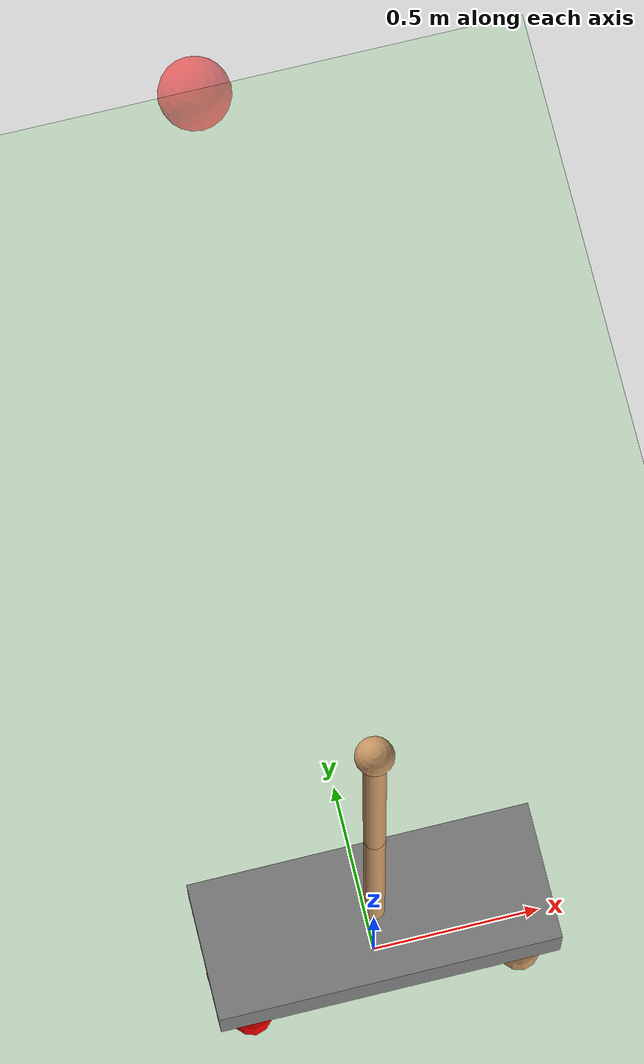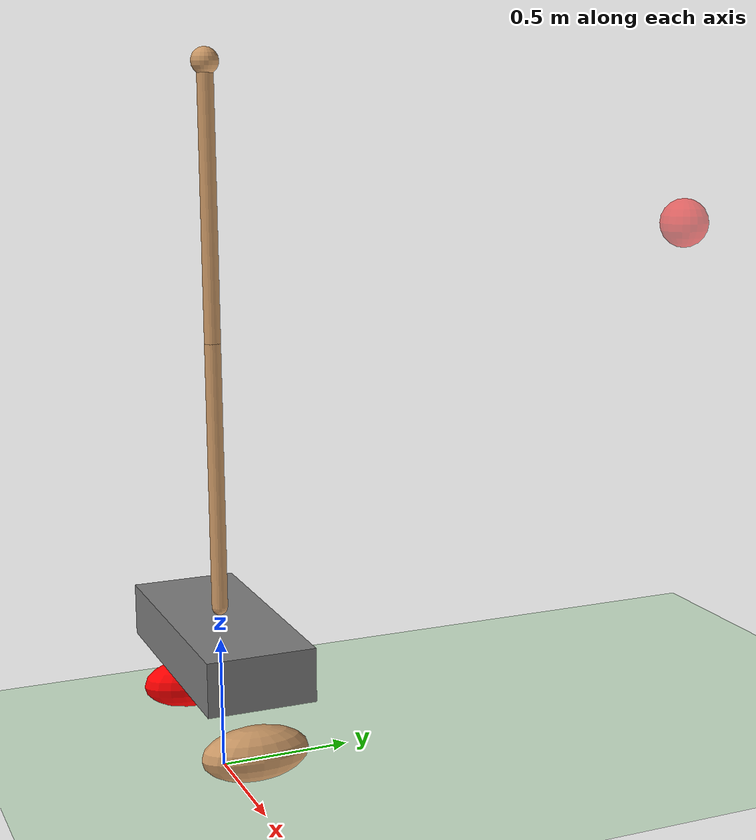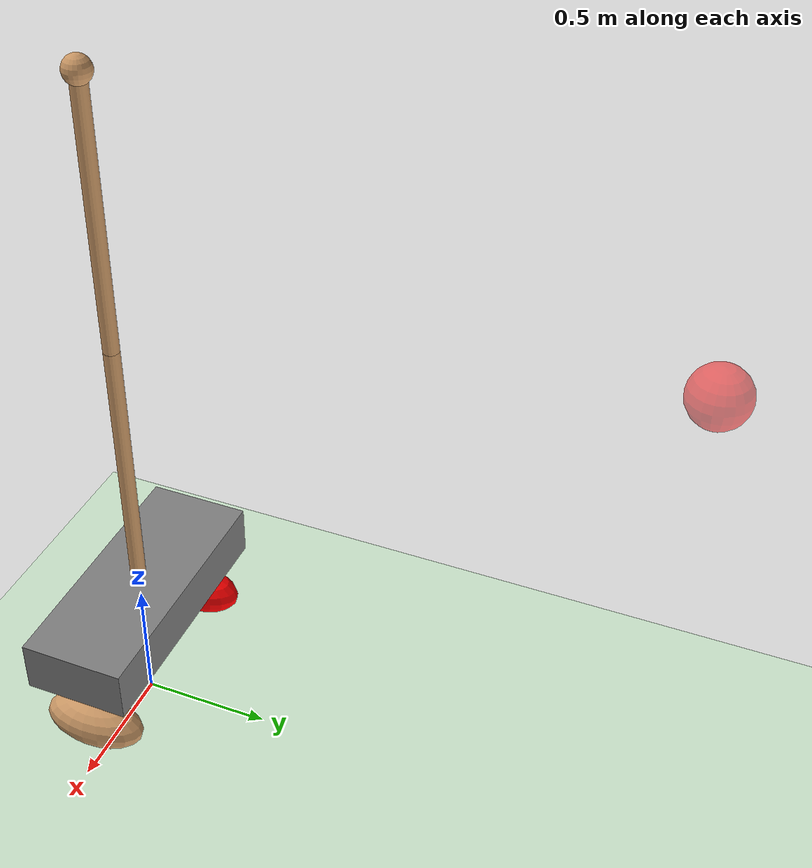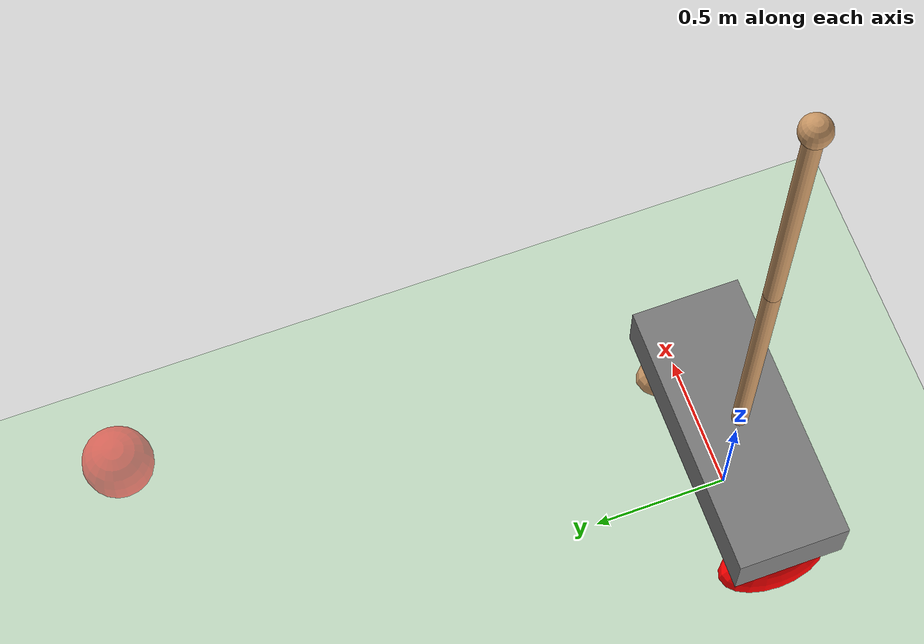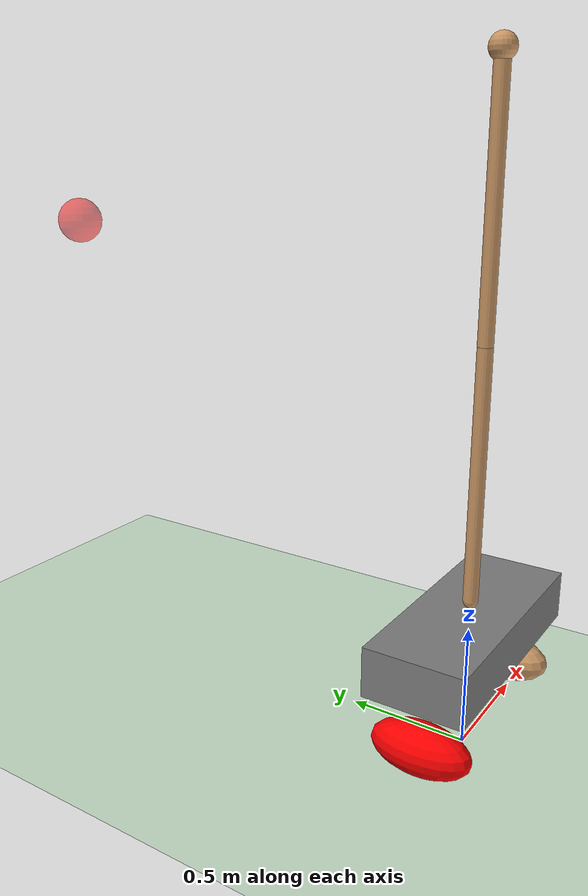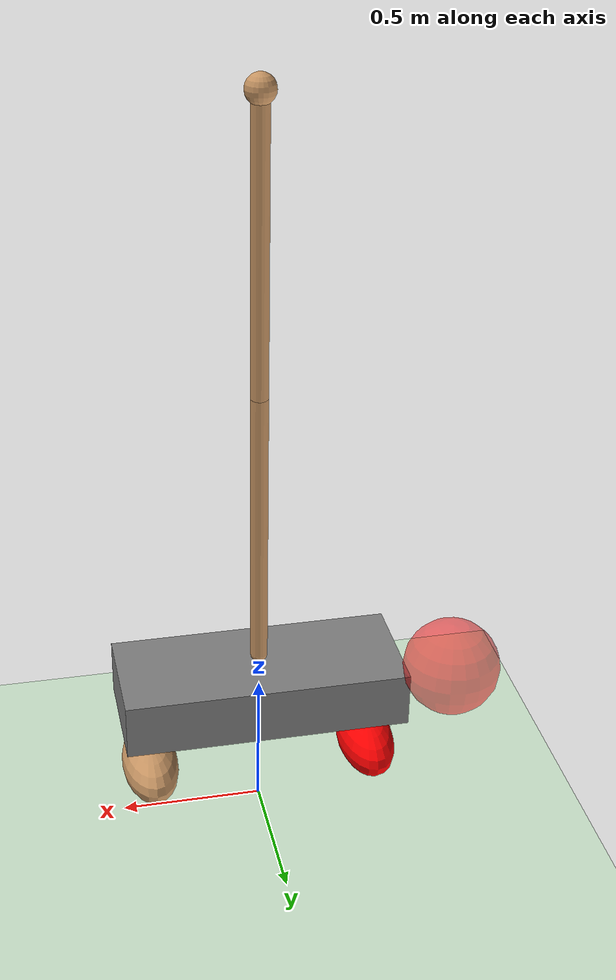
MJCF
<mujoco model="cartarm2d">
  <compiler angle="degree" inertiafromgeom="true"/>
  <default>
    <joint armature="0.01" damping=".1" limited="true"/>
    <geom conaffinity="0" condim="3" contype="1" density="1000" friction="1.2 .1 .1" rgba="0.8 0.6 .4 1"/>
    <motor ctrllimited="true" ctrlrange="-1 1"/>
  </default>
    <asset>
      <texture builtin="gradient" height="100" rgb1=".4 .5 .6" rgb2="0 0 0" type="skybox" width="100"/>
      <texture builtin="flat" height="1278" mark="cross" markrgb="1 1 1" name="texgeom" random="0.01" rgb1="0.8 0.6 0.4" rgb2="0.8 0.6 0.4" type="cube" width="127"/>
      <texture builtin="checker" height="100" name="texplane" rgb1="0 0 0" rgb2="0.8 0.8 0.8" type="2d" width="100"/>
      <material name="MatPlane" reflectance="0.5" shininess="1" specular="1" texrepeat="60 60" texture="texplane"/>
      <material name="geom" texture="texgeom" texuniform="true"/>
    </asset>
  <option integrator="RK4" iterations="50" solver="PGS" timestep="0.003" />
  <worldbody>
      <light cutoff="100" diffuse="1 1 1" dir="-0 0 -1.3" directional="true" exponent="1" pos="0 0 1.3" specular=".1 .1 .1"/>
      <geom condim="3" friction="1 .1 .1" material="MatPlane" name="floor" pos="0 0 0" rgba="0.8 0.9 0.8 1" size="20 20 0.125" type="plane"/>

    <body name="root" pos="0 0 0.5">
        <camera name="track" mode="trackcom" pos="0 -4 0" xyaxes="1 0 0 0 0 1"/>
      <joint armature="0" damping="0" limited="false" name="root" pos="0 0 0" stiffness="0" type="free" />
      <geom name="root" type="box" contype="1" conaffinity="1" size="0.5 0.2 0.1" rgba="0.5 0.5 0.5 1" mass="100"/>
      <body name="lead_wheel" pos="0.4 0 -0.3">
        <geom name="lead_wheel" type="ellipsoid" contype="1" conaffinity="1" size="0.1 0.2 0.1" material="geom" mass="1000"/>
        <joint axis="0 1 0" name="lead_wheel" pos="0 0 0" limited="false" type="hinge" damping="0.0001"/>
      </body>
      <body name="back_wheel" pos="-0.4 0 -0.3">
        <geom name="back_wheel" type="ellipsoid" contype="1" conaffinity="1" size="0.1 0.2 0.1" material="geom" rgba="1 0 0 1" mass="1000"/>
        <joint axis="0 1 0" name="back_wheel" pos="0 0 0" limited="false" type="hinge" damping="0.0001"/>
      </body>
        <body name="humerus" pos="0 0 0.13">
            <geom name="humerus" type="capsule" contype="1" conaffinity="1" size="0.03" fromto="0 0 0 0 0 1.0" mass="1"/>
            <joint axis="0 1 0" name="shoulder" pos="0 0 0" limited="true" range="-70 70" type="hinge" damping="0.01"/>
            <body name="forearm" pos="0 0 1">
                <geom name="forearm" type="capsule" contype="1" conaffinity="1" size="0.03" fromto="0 0 0 0 0 1.0" mass="1"/>
                <joint axis="0 1 0" name="elbow" pos="0 0 0" limited="true" range="-120 120" type="hinge" damping="0.01"/>
                <body name="hand" pos="0 0 1.0">
                    <geom name="hand" contype="1" conaffinity="1" type="sphere" size="0.05" material="geom" mass="1"/>
                </body>
            </body>
        </body>
    </body>

      <body name="targetball" pos="0 2 2" mocap="true">
        <geom name="targetball" pos="0 0 0" contype="0" conaffinity="0" type="sphere" size="0.1" rgba="1 0 0 0.5"/>
    </body>

  </worldbody>
  <actuator>
     <motor joint="back_wheel" gear="1000" />
     <motor joint="lead_wheel" gear="1000" />
     <motor joint="shoulder" gear="300" />
     <motor joint="elbow" gear="300" />
  </actuator>
</mujoco>
